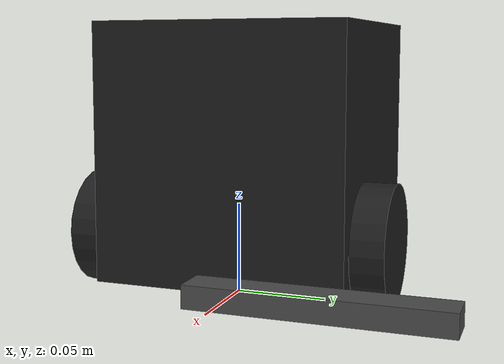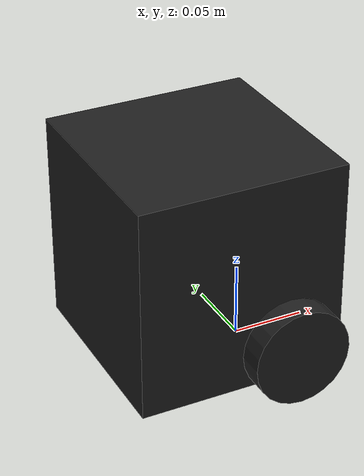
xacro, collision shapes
<?xml version="1.0" ?>
<robot name="line_follower" xmlns:xacro="http://ros.org/wiki/xacro">
  <xacro:include filename="$(find line_follower)/urdf/common_properties.xacro"/>
  <xacro:include filename="$(find line_follower)/urdf/lfb.gazebo"/>
    <xacro:include filename="$(find line_follower)/urdf/macro.xacro" />

  <link name="base_footprint"/>

  <joint name="base_joint" type="fixed">
    <parent link="base_footprint"/>
    <child link="base_link"/>
    <origin xyz="0.0 0.0 0.010" rpy="0 0 0"/>
  </joint>

  <link name="base_link">
    <visual>
      <origin xyz="-0.032 0 0.0" rpy="0 0 0"/>
      <geometry>
        <mesh filename="$(find line_follower)/urdf/meshes/lfb_base.stl" scale="0.001 0.001 0.001"/>
      </geometry>
      <material name="light_black"/>
    </visual>

    <collision>
      <origin xyz="-0.032 0 0.070" rpy="0 0 0"/>
      <geometry>
        <box size="0.140 0.140 0.143"/>
      </geometry>
    </collision>

    <inertial>
      <origin xyz="0 0 0" rpy="0 0 0"/>
      <mass value="8.2573504e-01"/>
      <inertia ixx="2.2124416e-03" ixy="-1.2294101e-05" ixz="3.4938785e-05"
               iyy="2.1193702e-03" iyz="-5.0120904e-06"
               izz="2.0064271e-03" />
    </inertial>
  </link>

  <joint name="wheel_left_joint" type="continuous">
    <parent link="base_link"/>
    <child link="wheel_left_link"/>
    <origin xyz="0.0 0.08 0.023" rpy="-1.57 0 0"/>
    <axis xyz="0 0 1"/>
  </joint>

  <link name="wheel_left_link">
    <visual>
      <origin xyz="0 0 0" rpy="1.57 0 0"/>
      <geometry>
        <mesh filename="$(find line_follower)/urdf/meshes/left_tire.stl" scale="0.001 0.001 0.001"/>
      </geometry>
      <material name="dark"/>
    </visual>

    <collision>
      <origin xyz="0 0 0" rpy="0 0 0"/>
      <geometry>
        <cylinder length="0.018" radius="0.033"/>
      </geometry>
    </collision>

    <inertial>
      <origin xyz="0 0 0" />
      <mass value="2.8498940e-02" />
      <inertia ixx="1.1175580e-05" ixy="-4.2369783e-11" ixz="-5.9381719e-09"
               iyy="1.1192413e-05" iyz="-1.4400107e-11"
               izz="2.0712558e-05" />
      </inertial>
  </link>

  <joint name="wheel_right_joint" type="continuous">
    <parent link="base_link"/>
    <child link="wheel_right_link"/>
    <origin xyz="0.0 -0.080 0.023" rpy="-1.57 0 0"/>
    <axis xyz="0 0 1"/>
  </joint>

  <link name="wheel_right_link">
    <visual>
      <origin xyz="0 0 0" rpy="1.57 0 0"/>
      <geometry>
        <mesh filename="$(find line_follower)/urdf/meshes/right_tire.stl" scale="0.001 0.001 0.001"/>
      </geometry>
      <material name="dark"/>
    </visual>

    <collision>
      <origin xyz="0 0 0" rpy="0 0 0"/>
      <geometry>
        <cylinder length="0.018" radius="0.033"/>
      </geometry>
    </collision>

    <inertial>
      <origin xyz="0 0 0" />
      <mass value="2.8498940e-02" />
      <inertia ixx="1.1175580e-05" ixy="-4.2369783e-11" ixz="-5.9381719e-09"
               iyy="1.1192413e-05" iyz="-1.4400107e-11"
               izz="2.0712558e-05" />
      </inertial>
  </link>

  <joint name="caster_back_joint" type="fixed">
    <parent link="base_link"/>
    <child link="caster_back_link"/>
    <origin xyz="-0.081 0 -0.004" rpy="-1.57 0 0"/>
  </joint>

  <link name="caster_back_link">
    <collision>
      <origin xyz="0 0.001 0" rpy="0 0 0"/>
      <geometry>
        <box size="0.030 0.009 0.020"/>
      </geometry>
    </collision>

    <inertial>
      <origin xyz="0 0 0" />
      <mass value="0.005" />
      <inertia ixx="0.001" ixy="0.0" ixz="0.0"
               iyy="0.001" iyz="0.0"
               izz="0.001" />
    </inertial>
  </link>

  <xacro:fixed_joint name="camera_joint"   parent="base_link"  child="camera_link" origin_xyz="0.06 0 0.01" origin_rpy="0 1.5707 0"/>

  <link name="camera_link">
    <visual>
     <origin xyz="0 0 0" rpy="1.57 0 1.57"/>
      <geometry>
        <box size="0.1 0.02 0.005"/>
      </geometry>
    </visual>
    <collision>
      <origin xyz="0.003 0.065 0.007" rpy="0 0 0"/>
      <geometry>
        <box size="0.012 0.132 0.020"/>
      </geometry>
    </collision>
  </link>
<!-- middle -->
  <xacro:fixed_joint name="camera_rgb_joint"   parent="camera_link"  child="camera_rgb_frame" origin_xyz=" 0.01 0 0 " origin_rpy="0 0 0"/>

  <link name="camera_rgb_frame"/>

<!-- left -->

<xacro:fixed_joint name="camera_lrgb_joint"   parent="camera_link"  child="camera_lrgb_frame" origin_xyz=" 0.01 0.050 0" origin_rpy="0 0 0"/>

  <link name="camera_lrgb_frame"/>

<!-- right -->

  <xacro:fixed_joint name="camera_rrgb_joint"   parent="camera_link"  child="camera_rrgb_frame" origin_xyz="0.01 -0.040  0" origin_rpy="0 0 0"/>

  <link name="camera_rrgb_frame"/>

</robot>

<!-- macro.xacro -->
<robot xmlns:xacro="http://www.ros.org/wiki/xacro">

    <xacro:macro name="fixed_joint" params="name parent child origin_xyz origin_rpy">
      <joint name="${name}" type="fixed">
        <origin rpy="${origin_rpy}" xyz="${origin_xyz}"/>
        <child link="${child}"/>
        <parent link="${parent}"/>
      </joint>
    </xacro:macro>

</robot>
